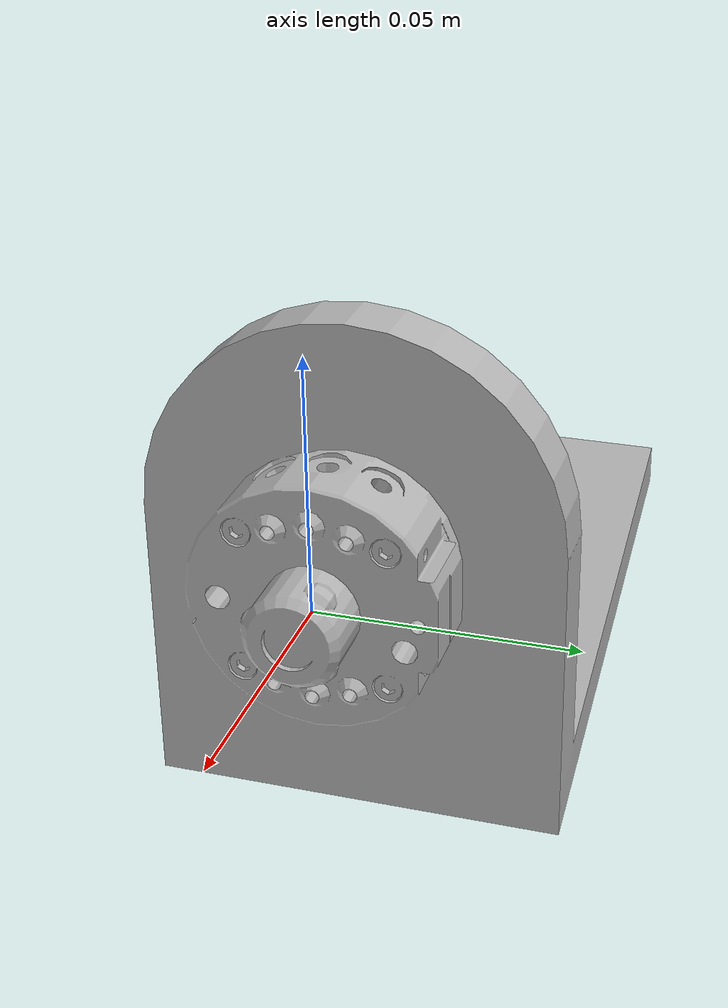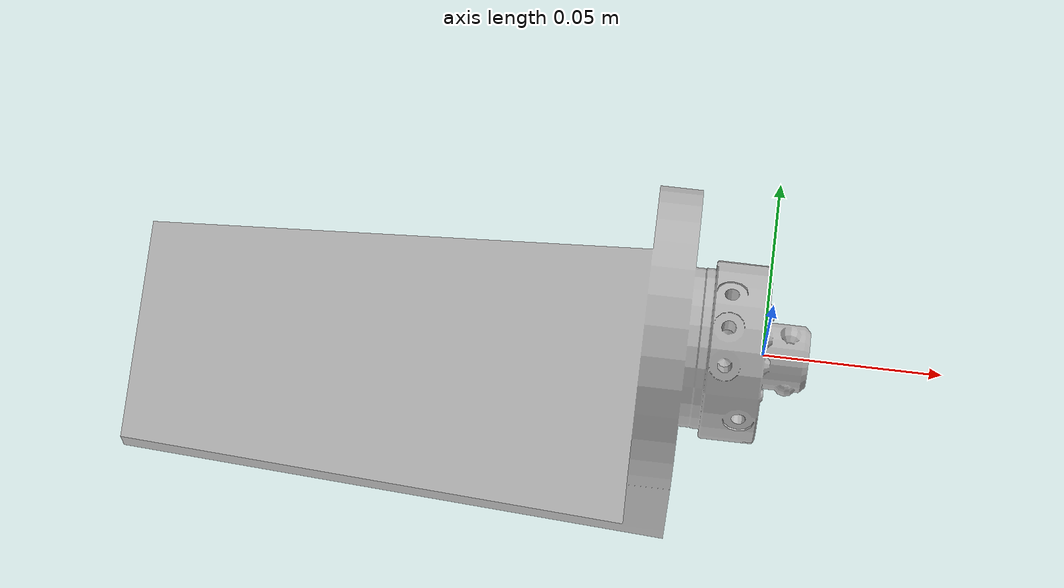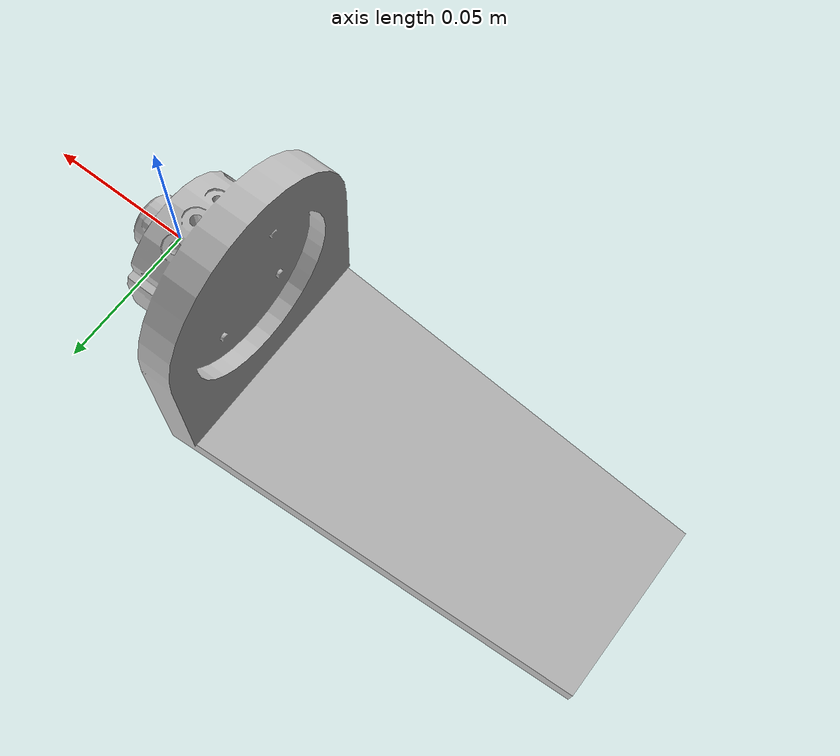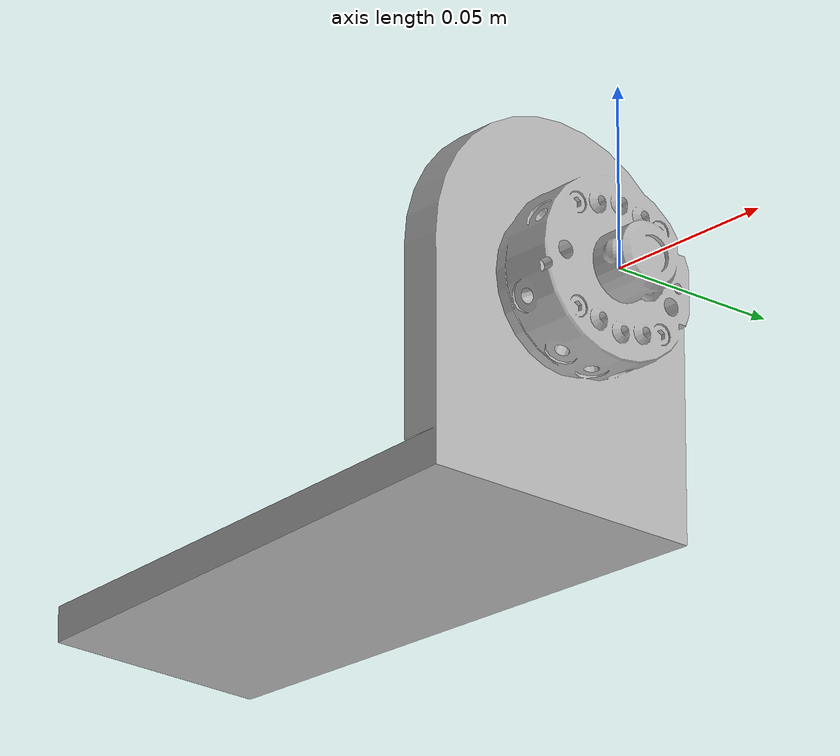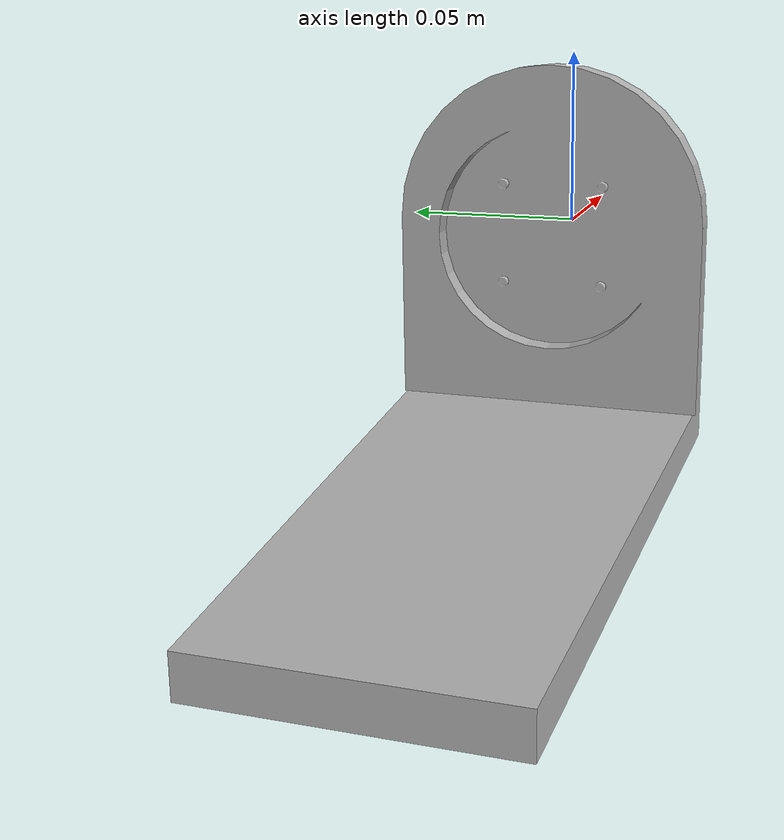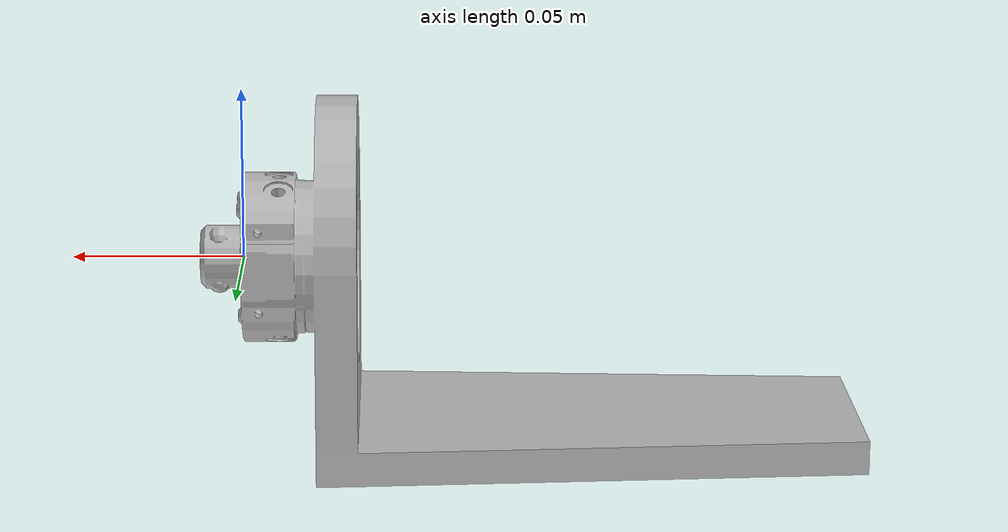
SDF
<?xml version="1.0" ?>
<sdf version="1.6">
  <model name="tool_mount">
    <link name="mount">
      <inertial>
        <mass>0.23170504236087314</mass>
        <pose>  1.7381693723e-06 -1.2078454606e-02  1.0968082327e-05 0 0 0 </pose>
        <inertia>
            <ixx>  4.7087914472e-05 </ixx>
            <ixy>  2.9688550775e-09 </ixy>
            <ixz> -4.4471234162e-08 </ixz>
            <iyy>  6.7356053048e-05 </iyy>
            <iyz>  1.8736423946e-08 </iyz>
            <izz>  4.6814177648e-05 </izz>
        </inertia>
      </inertial>
      <collision name="collision">
        <geometry>
          <mesh>
            <uri>model://tool_mount/meshes/collision.stl</uri>
          </mesh>
        </geometry>
      </collision>
      <visual name="visual">
	    <geometry>
          <mesh>
            <uri>model://tool_mount/meshes/visual.dae</uri>
          </mesh>
        </geometry>
      </visual>
    </link>
  </model>
</sdf>
